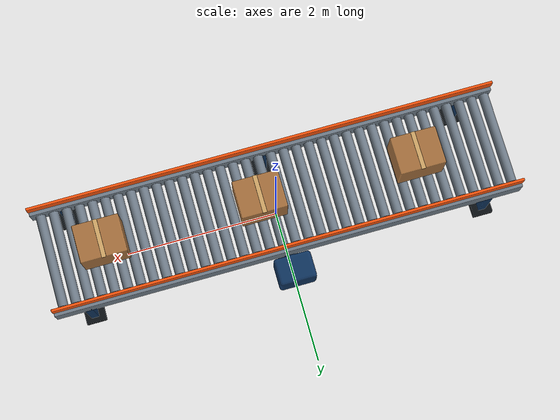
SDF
<?xml version='1.0' encoding='utf-8'?>
<sdf version="1.10">
  <model name="roller_conveyor">
    <static>true</static>
    <link name="body">
      <collision name="envelope">
        <pose>0 0 0.6 0 0 0</pose>
        <geometry>
          <box>
            <size>6.1 1.95 1.2</size>
          </box>
        </geometry>
      </collision>
      <visual name="steel">
        <geometry>
          <mesh>
            <uri>model://roller_conveyor/meshes/steel.obj</uri>
          </mesh>
        </geometry>
        <material>
          <diffuse>0.44 0.49 0.54 1</diffuse>
          <ambient>0.308 0.34299999999999997 0.378 1</ambient>
          <specular>0.4 0.4 0.4 1</specular>
        </material>
      </visual>
      <visual name="orange">
        <geometry>
          <mesh>
            <uri>model://roller_conveyor/meshes/orange.obj</uri>
          </mesh>
        </geometry>
        <material>
          <diffuse>0.98 0.33 0.045 1</diffuse>
          <ambient>0.6859999999999999 0.23099999999999998 0.0315 1</ambient>
          <specular>0.1 0.1 0.1 1</specular>
        </material>
      </visual>
      <visual name="blue">
        <geometry>
          <mesh>
            <uri>model://roller_conveyor/meshes/blue.obj</uri>
          </mesh>
        </geometry>
        <material>
          <diffuse>0.055 0.2 0.37 1</diffuse>
          <ambient>0.0385 0.13999999999999999 0.259 1</ambient>
          <specular>0.1 0.1 0.1 1</specular>
        </material>
      </visual>
      <visual name="dark">
        <geometry>
          <mesh>
            <uri>model://roller_conveyor/meshes/dark.obj</uri>
          </mesh>
        </geometry>
        <material>
          <diffuse>0.045 0.06 0.077 1</diffuse>
          <ambient>0.0315 0.041999999999999996 0.053899999999999997 1</ambient>
          <specular>0.1 0.1 0.1 1</specular>
        </material>
      </visual>
      <visual name="cardboard">
        <geometry>
          <mesh>
            <uri>model://roller_conveyor/meshes/cardboard.obj</uri>
          </mesh>
        </geometry>
        <material>
          <diffuse>0.65 0.44 0.24 1</diffuse>
          <ambient>0.45499999999999996 0.308 0.16799999999999998 1</ambient>
          <specular>0.1 0.1 0.1 1</specular>
        </material>
      </visual>
      <visual name="tape">
        <geometry>
          <mesh>
            <uri>model://roller_conveyor/meshes/tape.obj</uri>
          </mesh>
        </geometry>
        <material>
          <diffuse>0.82 0.65 0.4 1</diffuse>
          <ambient>0.574 0.45499999999999996 0.27999999999999997 1</ambient>
          <specular>0.1 0.1 0.1 1</specular>
        </material>
      </visual>
      <visual name="label">
        <geometry>
          <mesh>
            <uri>model://roller_conveyor/meshes/label.obj</uri>
          </mesh>
        </geometry>
        <material>
          <diffuse>0.92 0.92 0.87 1</diffuse>
          <ambient>0.644 0.644 0.609 1</ambient>
          <specular>0.1 0.1 0.1 1</specular>
        </material>
      </visual>
    </link>
  </model>
</sdf>
